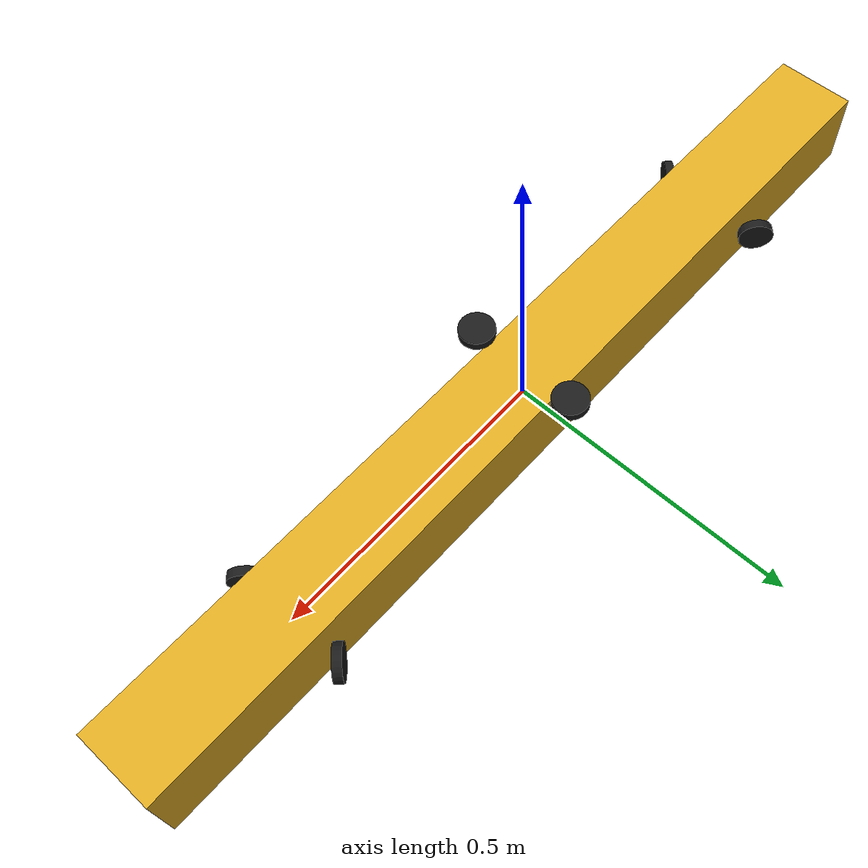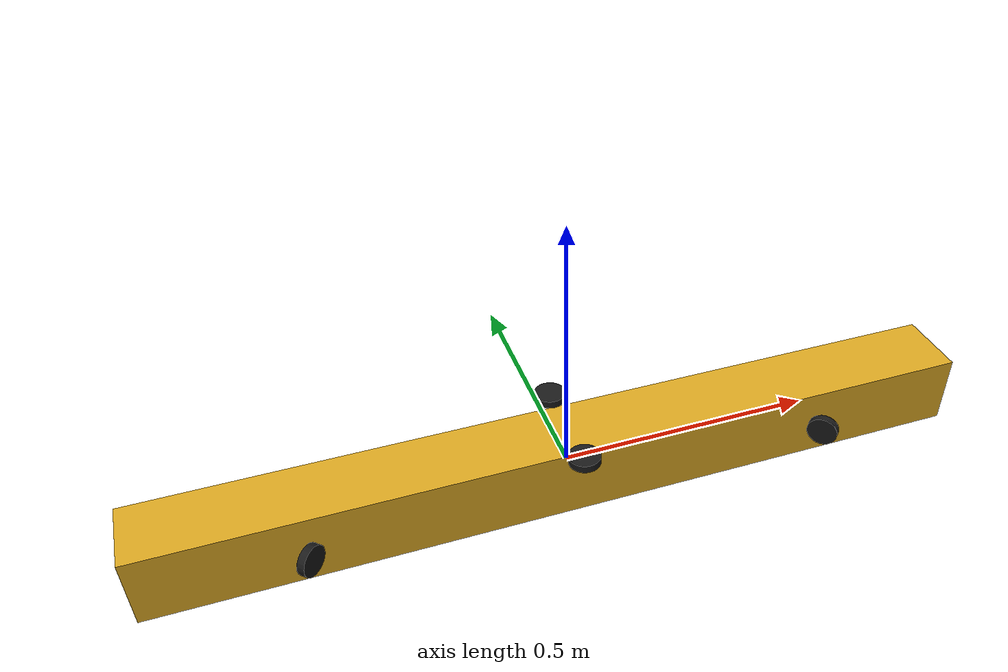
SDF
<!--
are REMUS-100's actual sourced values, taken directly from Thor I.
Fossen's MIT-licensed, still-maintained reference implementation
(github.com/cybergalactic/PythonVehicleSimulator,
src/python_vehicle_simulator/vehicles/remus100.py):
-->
<sdf version="1.9">
  <model name="remus100">
    <pose>0 0 0 0 0 0</pose>

    <link name="base_link">
      <inertial>
        <pose>0.0 0.0 -0.02 0 0 0</pose>
        <mass>31.9</mass>
        <inertia>
          <ixx>0.1152</ixx>
          <ixy>0</ixy>
          <ixz>0</ixz>
          <iyy>4.1408</iyy>
          <iyz>0</iyz>
          <izz>4.1408</izz>
        </inertia>
      </inertial>

      <collision name="base_link_collision">
        <geometry>
          <box><size>1.6 0.14013 0.14013</size></box>
        </geometry>
      </collision>

      <visual name="base_link_visual">
        <geometry>
          <box><size>1.6 0.14013 0.14013</size></box>
        </geometry>
        <material>
          <diffuse>0.85 0.65 0.13 1</diffuse>
          <ambient>0.6 0.45 0.1 1</ambient>
          <specular>0.5 0.5 0.5 1</specular>
        </material>
      </visual>

      <sensor name="imu_sensor" type="imu">
        <pose>0 0 0 3.142 0 0</pose>
        <always_on>1</always_on>
        <update_rate>1000.0</update_rate>
      </sensor>
    </link>

    <!-- Hydrodynamics: real Cd=0.42-derived surge drag, side-profile-area
         derived sway/heave drag, live-tuned angular damping (see header). -->
    <plugin
        filename="gz-sim-hydrodynamics-system"
        name="gz::sim::systems::Hydrodynamics">
      <link_name>base_link</link_name>
      <water_density>1025.0</water_density>
      <xDotU>0</xDotU>
      <yDotV>0</yDotV>
      <zDotW>0</zDotW>
      <kDotP>0</kDotP>
      <mDotQ>0</mDotQ>
      <nDotR>0</nDotR>
      <xU>0</xU>
      <yV>0</yV>
      <zW>0</zW>
      <kP>-5</kP>
      <mQ>-8</mQ>
      <nR>-8</nR>
      <xUabsU>-6.11</xUabsU>
      <yVabsV>-65.5</yVabsV>
      <zWabsW>-65.5</zWabsW>
      <kPabsP>-8</kPabsP>
      <mQabsQ>-15</mQabsQ>
      <nRabsR>-15</nRabsR>
    </plugin>

    <link name="thruster1">
      <pose>0.5 -0.095 0.0 -1.571 1.571 -0.785</pose>
      <inertial>
        <mass>0.05</mass>
        <inertia>
          <ixx>0.0005</ixx><ixy>0</ixy><ixz>0</ixz>
          <iyy>0.0005</iyy><iyz>0</iyz><izz>0.0005</izz>
        </inertia>
      </inertial>
      <visual name="thruster_visual">
        <geometry><cylinder><radius>0.03</radius><length>0.015</length></cylinder></geometry>
        <material><diffuse>0.1 0.1 0.1 1</diffuse><ambient>0.1 0.1 0.1 1</ambient></material>
      </visual>
    </link>
    <link name="thruster2">
      <pose>0.5 0.095 0.0 -1.571 1.571 -2.356</pose>
      <inertial>
        <mass>0.05</mass>
        <inertia>
          <ixx>0.0005</ixx><ixy>0</ixy><ixz>0</ixz>
          <iyy>0.0005</iyy><iyz>0</iyz><izz>0.0005</izz>
        </inertia>
      </inertial>
      <visual name="thruster_visual">
        <geometry><cylinder><radius>0.03</radius><length>0.015</length></cylinder></geometry>
        <material><diffuse>0.1 0.1 0.1 1</diffuse><ambient>0.1 0.1 0.1 1</ambient></material>
      </visual>
    </link>
    <link name="thruster3">
      <pose>-0.5 -0.095 0.0 -1.571 1.571 0.785</pose>
      <inertial>
        <mass>0.05</mass>
        <inertia>
          <ixx>0.0005</ixx><ixy>0</ixy><ixz>0</ixz>
          <iyy>0.0005</iyy><iyz>0</iyz><izz>0.0005</izz>
        </inertia>
      </inertial>
      <visual name="thruster_visual">
        <geometry><cylinder><radius>0.03</radius><length>0.015</length></cylinder></geometry>
        <material><diffuse>0.1 0.1 0.1 1</diffuse><ambient>0.1 0.1 0.1 1</ambient></material>
      </visual>
    </link>
    <link name="thruster4">
      <pose>-0.5 0.095 0.0 -1.571 1.571 2.356</pose>
      <inertial>
        <mass>0.05</mass>
        <inertia>
          <ixx>0.0005</ixx><ixy>0</ixy><ixz>0</ixz>
          <iyy>0.0005</iyy><iyz>0</iyz><izz>0.0005</izz>
        </inertia>
      </inertial>
      <visual name="thruster_visual">
        <geometry><cylinder><radius>0.03</radius><length>0.015</length></cylinder></geometry>
        <material><diffuse>0.1 0.1 0.1 1</diffuse><ambient>0.1 0.1 0.1 1</ambient></material>
      </visual>
    </link>

    <!-- 2 vertical thrusters (heave/roll), mounted at the hull surface. -->
    <link name="thruster5">
      <pose>0.0 -0.095 0.08 0 0 0</pose>
      <inertial>
        <mass>0.05</mass>
        <inertia>
          <ixx>0.0005</ixx><ixy>0</ixy><ixz>0</ixz>
          <iyy>0.0005</iyy><iyz>0</iyz><izz>0.0005</izz>
        </inertia>
      </inertial>
      <visual name="thruster_visual">
        <geometry><cylinder><radius>0.03</radius><length>0.015</length></cylinder></geometry>
        <material><diffuse>0.1 0.1 0.1 1</diffuse><ambient>0.1 0.1 0.1 1</ambient></material>
      </visual>
    </link>
    <link name="thruster6">
      <pose>0.0 0.095 0.08 0 0 0</pose>
      <inertial>
        <mass>0.05</mass>
        <inertia>
          <ixx>0.0005</ixx><ixy>0</ixy><ixz>0</ixz>
          <iyy>0.0005</iyy><iyz>0</iyz><izz>0.0005</izz>
        </inertia>
      </inertial>
      <visual name="thruster_visual">
        <geometry><cylinder><radius>0.03</radius><length>0.015</length></cylinder></geometry>
        <material><diffuse>0.1 0.1 0.1 1</diffuse><ambient>0.1 0.1 0.1 1</ambient></material>
      </visual>
    </link>

    <joint name="thruster1_joint" type="revolute">
      <parent>base_link</parent><child>thruster1</child>
      <axis><xyz>0 0 -1</xyz></axis>
    </joint>
    <joint name="thruster2_joint" type="revolute">
      <parent>base_link</parent><child>thruster2</child>
      <axis><xyz>0 0 -1</xyz></axis>
    </joint>
    <joint name="thruster3_joint" type="revolute">
      <parent>base_link</parent><child>thruster3</child>
      <axis><xyz>0 0 -1</xyz></axis>
    </joint>
    <joint name="thruster4_joint" type="revolute">
      <parent>base_link</parent><child>thruster4</child>
      <axis><xyz>0 0 -1</xyz></axis>
    </joint>
    <joint name="thruster5_joint" type="revolute">
      <parent>base_link</parent><child>thruster5</child>
      <axis><xyz>0 0 -1</xyz></axis>
    </joint>
    <joint name="thruster6_joint" type="revolute">
      <parent>base_link</parent><child>thruster6</child>
      <axis><xyz>0 0 -1</xyz></axis>
    </joint>

    <!-- Thrust scaled from BlueROV2's own (mass ratio 31.9/10 ~= 3.19),
         moderated for controllable rather than toy-like acceleration —
         see header derivation. -->
    <plugin filename="gz-sim-thruster-system" name="gz::sim::systems::Thruster">
      <namespace>remus100</namespace>
      <joint_name>thruster1_joint</joint_name>
      <thrust_coefficient>0.02</thrust_coefficient>
      <fluid_density>1025.0</fluid_density>
      <propeller_diameter>0.06</propeller_diameter>
      <velocity_control>true</velocity_control>
      <use_angvel_cmd>False</use_angvel_cmd>
    </plugin>
    <plugin filename="gz-sim-thruster-system" name="gz::sim::systems::Thruster">
      <namespace>remus100</namespace>
      <joint_name>thruster2_joint</joint_name>
      <thrust_coefficient>0.02</thrust_coefficient>
      <fluid_density>1025.0</fluid_density>
      <propeller_diameter>0.06</propeller_diameter>
      <velocity_control>true</velocity_control>
      <use_angvel_cmd>False</use_angvel_cmd>
    </plugin>
    <plugin filename="gz-sim-thruster-system" name="gz::sim::systems::Thruster">
      <namespace>remus100</namespace>
      <joint_name>thruster3_joint</joint_name>
      <thrust_coefficient>-0.02</thrust_coefficient>
      <fluid_density>1025.0</fluid_density>
      <propeller_diameter>0.06</propeller_diameter>
      <velocity_control>true</velocity_control>
      <use_angvel_cmd>False</use_angvel_cmd>
    </plugin>
    <plugin filename="gz-sim-thruster-system" name="gz::sim::systems::Thruster">
      <namespace>remus100</namespace>
      <joint_name>thruster4_joint</joint_name>
      <thrust_coefficient>-0.02</thrust_coefficient>
      <fluid_density>1025.0</fluid_density>
      <propeller_diameter>0.06</propeller_diameter>
      <velocity_control>true</velocity_control>
      <use_angvel_cmd>False</use_angvel_cmd>
    </plugin>
    <plugin filename="gz-sim-thruster-system" name="gz::sim::systems::Thruster">
      <namespace>remus100</namespace>
      <joint_name>thruster5_joint</joint_name>
      <thrust_coefficient>0.02</thrust_coefficient>
      <fluid_density>1025.0</fluid_density>
      <propeller_diameter>0.06</propeller_diameter>
      <velocity_control>true</velocity_control>
      <use_angvel_cmd>False</use_angvel_cmd>
    </plugin>
    <plugin filename="gz-sim-thruster-system" name="gz::sim::systems::Thruster">
      <namespace>remus100</namespace>
      <joint_name>thruster6_joint</joint_name>
      <thrust_coefficient>-0.02</thrust_coefficient>
      <fluid_density>1025.0</fluid_density>
      <propeller_diameter>0.06</propeller_diameter>
      <velocity_control>true</velocity_control>
      <use_angvel_cmd>False</use_angvel_cmd>
    </plugin>

    <plugin name="ArduPilotPlugin" filename="libArduPilotPlugin.so">
      <fdm_addr>127.0.0.1</fdm_addr>
      <fdm_port_in>9100</fdm_port_in>
      <connectionTimeoutMaxCount>5</connectionTimeoutMaxCount>
      <lock_step>1</lock_step>
      <modelXYZToAirplaneXForwardZDown>0 0 0 3.142 0 0</modelXYZToAirplaneXForwardZDown>
      <gazeboXYZToNED>0 0 0 3.142 0 1.571</gazeboXYZToNED>
      <imuName>imu_sensor</imuName>

      <control channel="0">
        <jointName>thruster1_joint</jointName>
        <servo_min>1100</servo_min><servo_max>1900</servo_max>
        <type>COMMAND</type>
        <cmd_topic>/model/remus100/joint/thruster1_joint/cmd_thrust</cmd_topic>
        <offset>-0.5</offset><multiplier>150</multiplier>
      </control>
      <control channel="1">
        <jointName>thruster2_joint</jointName>
        <servo_min>1100</servo_min><servo_max>1900</servo_max>
        <type>COMMAND</type>
        <cmd_topic>/model/remus100/joint/thruster2_joint/cmd_thrust</cmd_topic>
        <offset>-0.5</offset><multiplier>150</multiplier>
      </control>
      <control channel="2">
        <jointName>thruster3_joint</jointName>
        <servo_min>1100</servo_min><servo_max>1900</servo_max>
        <type>COMMAND</type>
        <cmd_topic>/model/remus100/joint/thruster3_joint/cmd_thrust</cmd_topic>
        <offset>-0.5</offset><multiplier>150</multiplier>
      </control>
      <control channel="3">
        <jointName>thruster4_joint</jointName>
        <servo_min>1100</servo_min><servo_max>1900</servo_max>
        <type>COMMAND</type>
        <cmd_topic>/model/remus100/joint/thruster4_joint/cmd_thrust</cmd_topic>
        <offset>-0.5</offset><multiplier>150</multiplier>
      </control>
      <control channel="4">
        <jointName>thruster5_joint</jointName>
        <servo_min>1100</servo_min><servo_max>1900</servo_max>
        <type>COMMAND</type>
        <cmd_topic>/model/remus100/joint/thruster5_joint/cmd_thrust</cmd_topic>
        <offset>-0.5</offset><multiplier>150</multiplier>
      </control>
      <control channel="5">
        <jointName>thruster6_joint</jointName>
        <servo_min>1100</servo_min><servo_max>1900</servo_max>
        <type>COMMAND</type>
        <cmd_topic>/model/remus100/joint/thruster6_joint/cmd_thrust</cmd_topic>
        <offset>-0.5</offset><multiplier>150</multiplier>
      </control>
    </plugin>

    <plugin filename="gz-sim-odometry-publisher-system" name="gz::sim::systems::OdometryPublisher">
      <odom_frame>map</odom_frame>
      <robot_base_frame>base_link</robot_base_frame>
      <dimensions>3</dimensions>
      <odom_publish_frequency>100</odom_publish_frequency>
    </plugin>
    <plugin filename="gz-sim-joint-state-publisher-system" name="gz::sim::systems::JointStatePublisher"></plugin>
    <plugin filename="gz-sim-imu-system" name="gz::sim::systems::Imu"></plugin>

  </model>
</sdf>
